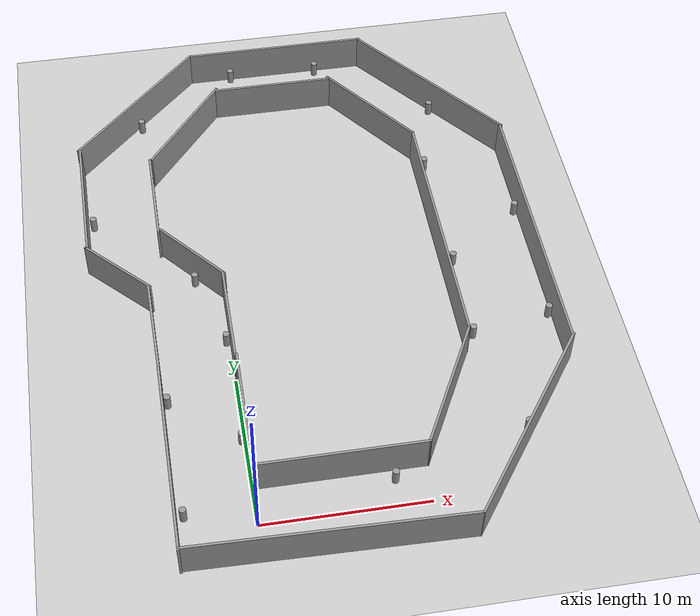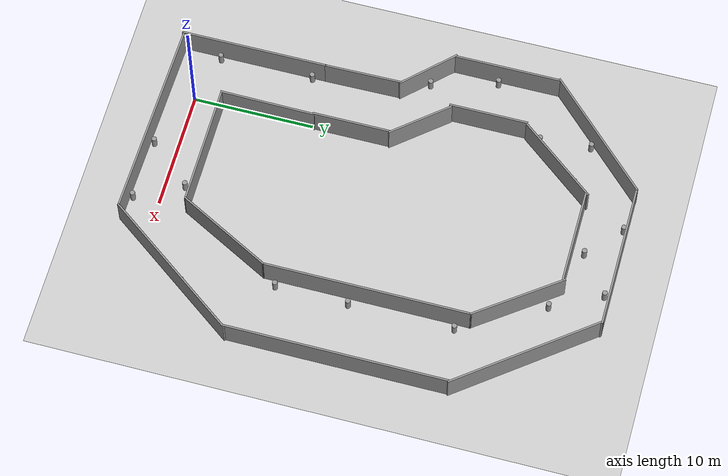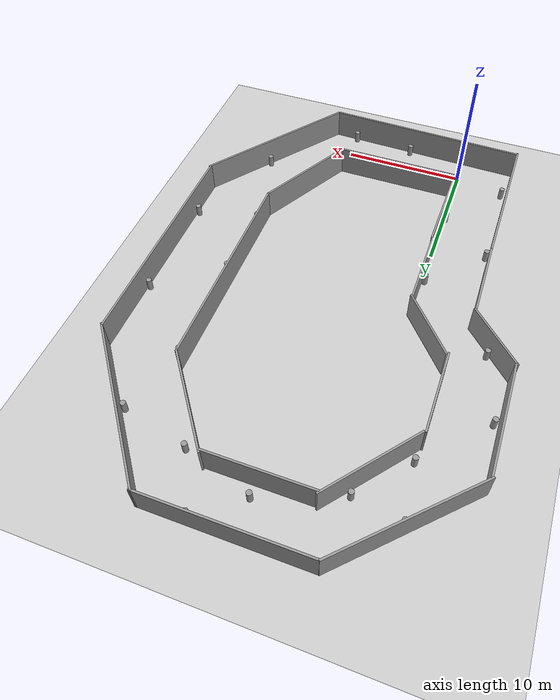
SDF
<sdf version="1.6">
 <world name="default">
  <light name="sun" type="directional">
   <pose>0 0 10 0 -0 0</pose>
   <diffuse>0.8 0.8 0.8 1</diffuse>
   <specular>0.1 0.1 0.1 1</specular>
   <attenuation>
    <range>1000</range>
    <constant>0.9</constant>
    <linear>0.01</linear>
    <quadratic>0.001</quadratic>
   </attenuation>
   <direction>-0.5 0.5 -1</direction>
  </light>
  <model name="ground_plane">
   <static>1</static>
   <link name="link">
    <collision name="collision">
     <geometry><plane><normal>0 0 1</normal><size>100 100</size></plane></geometry>
     <surface><friction><ode><mu>100</mu><mu2>50</mu2></ode></friction></surface>
    </collision>
    <visual name="visual">
     <cast_shadows>0</cast_shadows>
     <geometry><plane><normal>0 0 1</normal><size>100 100</size></plane></geometry>
     <material>
      <script><uri>file://media/materials/scripts/gazebo.material</uri><name>Gazebo/Grey</name></script>
     </material>
    </visual>
   </link>
  </model>
  <gravity>0 0 -9.8</gravity>
  <magnetic_field>6e-06 2.3e-05 -4.2e-05</magnetic_field>
  <atmosphere type="adiabatic"/>
  <physics name="default_physics" default="0" type="ode">
   <max_step_size>0.001</max_step_size>
   <real_time_factor>1</real_time_factor>
   <real_time_update_rate>1000</real_time_update_rate>
  </physics>
  <scene><ambient>0.4 0.4 0.4 1</ambient><background>0.7 0.7 0.7 1</background><shadows>1</shadows></scene>
  <spherical_coordinates>
   <surface_model>EARTH_WGS84</surface_model>
   <latitude_deg>0</latitude_deg>
   <longitude_deg>0</longitude_deg>
   <elevation>0</elevation>
   <heading_deg>0</heading_deg>
  </spherical_coordinates>
  <model name="simple_circle_track">
   <pose>6.01953 17.181 0 0 -0 0</pose>
   <link name="Wall_10">
    <collision name="Wall_10_Collision">
     <geometry><box><size>8.0533 0.15 2.5</size></box></geometry>
     <pose>0 0 1.25 0 -0 0</pose>
    </collision>
    <visual name="Wall_10_Visual">
     <pose>0 0 1.25 0 -0 0</pose>
     <geometry><box><size>8.0533 0.15 2.5</size></box></geometry>
     <material>
      <script><uri>file://media/materials/scripts/gazebo.material</uri><name>Gazebo/Grey</name></script>
      <ambient>1 1 1 1</ambient>
     </material>
    </visual>
    <pose>-6.9537 12.9645 0 0 -0 0.8927</pose>
   </link>
   <link name="Wall_11">
    <collision name="Wall_11_Collision">
     <geometry><box><size>8 0.15 2.5</size></box></geometry>
     <pose>0 0 1.25 0 -0 0</pose>
    </collision>
    <visual name="Wall_11_Visual">
     <pose>0 0 1.25 0 -0 0</pose>
     <geometry><box><size>8 0.15 2.5</size></box></geometry>
     <material>
      <script><uri>file://media/materials/scripts/gazebo.material</uri><name>Gazebo/Grey</name></script>
      <ambient>1 1 1 1</ambient>
     </material>
    </visual>
    <pose>-0.549785 15.8823 0 0 -0 0</pose>
   </link>
   <link name="Wall_12">
    <collision name="Wall_12_Collision">
     <geometry><box><size>8.12029 0.15 2.5</size></box></geometry>
     <pose>0 0 1.25 0 -0 0</pose>
    </collision>
    <visual name="Wall_12_Visual">
     <pose>0 0 1.25 0 -0 0</pose>
     <geometry><box><size>8.12029 0.15 2.5</size></box></geometry>
     <material>
      <script><uri>file://media/materials/scripts/gazebo.material</uri><name>Gazebo/Grey</name></script>
      <ambient>1 1 1 1</ambient>
     </material>
    </visual>
    <pose>5.76574 12.8534 0 0 0 -0.92747</pose>
   </link>
   <link name="Wall_13">
    <collision name="Wall_13_Collision">
     <geometry><box><size>17 0.15 2.5</size></box></geometry>
     <pose>0 0 1.25 0 -0 0</pose>
    </collision>
    <visual name="Wall_13_Visual">
     <pose>0 0 1.25 0 -0 0</pose>
     <geometry><box><size>17 0.15 2.5</size></box></geometry>
     <material>
      <script><uri>file://media/materials/scripts/gazebo.material</uri><name>Gazebo/Grey</name></script>
      <ambient>1 1 1 1</ambient>
     </material>
    </visual>
    <pose>8.15627 1.23982 0 0 0 -1.5708</pose>
   </link>
   <link name="Wall_16">
    <collision name="Wall_16_Collision">
     <geometry><box><size>6.41011 0.15 2.5</size></box></geometry>
     <pose>0 0 1.25 0 -0 0</pose>
    </collision>
    <visual name="Wall_16_Visual">
     <pose>0 0 1.25 0 -0 0</pose>
     <geometry><box><size>6.41011 0.15 2.5</size></box></geometry>
     <material>
      <script><uri>file://media/materials/scripts/gazebo.material</uri><name>Gazebo/Grey</name></script>
      <ambient>1 1 1 1</ambient>
     </material>
    </visual>
    <pose>-10.5599 -4.13279 0 0 -0 1.58354</pose>
   </link>
   <link name="Wall_17">
    <collision name="Wall_17_Collision">
     <geometry><box><size>5.41958 0.15 2.5</size></box></geometry>
     <pose>0 0 1.25 0 -0 0</pose>
    </collision>
    <visual name="Wall_17_Visual">
     <pose>0 0 1.25 0 -0 0</pose>
     <geometry><box><size>5.41958 0.15 2.5</size></box></geometry>
     <material>
      <script><uri>file://media/materials/scripts/gazebo.material</uri><name>Gazebo/Grey</name></script>
      <ambient>1 1 1 1</ambient>
     </material>
    </visual>
    <pose>-12.363 0.879928 0 0 -0 2.34549</pose>
   </link>
   <link name="Wall_20">
    <collision name="Wall_20_Collision">
     <geometry><box><size>8.8404 0.15 2.5</size></box></geometry>
     <pose>0 0 1.25 0 -0 0</pose>
    </collision>
    <visual name="Wall_20_Visual">
     <pose>0 0 1.25 0 -0 0</pose>
     <geometry><box><size>8.8404 0.15 2.5</size></box></geometry>
     <material>
      <script><uri>file://media/materials/scripts/gazebo.material</uri><name>Gazebo/Grey</name></script>
      <ambient>1 1 1 1</ambient>
     </material>
    </visual>
    <pose>-14.1263 7.10805 0 0 -0 1.5708</pose>
   </link>
   <link name="Wall_21">
    <collision name="Wall_21_Collision">
     <geometry><box><size>11.83 0.15 2.5</size></box></geometry>
     <pose>0 0 1.25 0 -0 0</pose>
    </collision>
    <visual name="Wall_21_Visual">
     <pose>0 0 1.25 0 -0 0</pose>
     <geometry><box><size>11.83 0.15 2.5</size></box></geometry>
     <material>
      <script><uri>file://media/materials/scripts/gazebo.material</uri><name>Gazebo/Grey</name></script>
      <ambient>1 1 1 1</ambient>
     </material>
    </visual>
    <pose>-10.0766 15.5827 0 0 -0 0.785398</pose>
   </link>
   <link name="Wall_22">
    <collision name="Wall_22_Collision">
     <geometry><box><size>12.25 0.15 2.5</size></box></geometry>
     <pose>0 0 1.25 0 -0 0</pose>
    </collision>
    <visual name="Wall_22_Visual">
     <pose>0 0 1.25 0 -0 0</pose>
     <geometry><box><size>12.25 0.15 2.5</size></box></geometry>
     <material>
      <script><uri>file://media/materials/scripts/gazebo.material</uri><name>Gazebo/Grey</name></script>
      <ambient>1 1 1 1</ambient>
     </material>
    </visual>
    <pose>0.182715 19.7122 0 0 -0 0</pose>
   </link>
   <link name="Wall_23">
    <collision name="Wall_23_Collision">
     <geometry><box><size>13.2158 0.15 2.5</size></box></geometry>
     <pose>0 0 1.25 0 -0 0</pose>
    </collision>
    <visual name="Wall_23_Visual">
     <pose>0 0 1.25 0 -0 0</pose>
     <geometry><box><size>13.2158 0.15 2.5</size></box></geometry>
     <material>
      <script><uri>file://media/materials/scripts/gazebo.material</uri><name>Gazebo/Grey</name></script>
      <ambient>1 1 1 1</ambient>
     </material>
    </visual>
    <pose>10.1799 14.5681 0 0 0 -0.906619</pose>
   </link>
   <link name="Wall_24">
    <collision name="Wall_24_Collision">
     <geometry><box><size>18.2401 0.15 2.5</size></box></geometry>
     <pose>0 0 1.25 0 -0 0</pose>
    </collision>
    <visual name="Wall_24_Visual">
     <pose>0 0 1.25 0 -0 0</pose>
     <geometry><box><size>18.2401 0.15 2.5</size></box></geometry>
     <material>
      <script><uri>file://media/materials/scripts/gazebo.material</uri><name>Gazebo/Grey</name></script>
      <ambient>1 1 1 1</ambient>
     </material>
    </visual>
    <pose>14.1271 0.379184 0 0 0 -1.5708</pose>
   </link>
   <link name="Wall_25">
    <collision name="Wall_25_Collision">
     <geometry><box><size>13.848 0.15 2.5</size></box></geometry>
     <pose>0 0 1.25 0 -0 0</pose>
    </collision>
    <visual name="Wall_25_Visual">
     <pose>0 0 1.25 0 -0 0</pose>
     <geometry><box><size>13.848 0.15 2.5</size></box></geometry>
     <material>
      <script><uri>file://media/materials/scripts/gazebo.material</uri><name>Gazebo/Grey</name></script>
      <ambient>1 1 1 1</ambient>
     </material>
    </visual>
    <pose>10.1578 -14.1895 0 0 0 -2.20332</pose>
   </link>
   <link name="Wall_28">
    <collision name="Wall_28_Collision">
     <geometry><box><size>16.6326 0.15 2.5</size></box></geometry>
     <pose>0 0 1.25 0 -0 0</pose>
    </collision>
    <visual name="Wall_28_Visual">
     <pose>0 0 1.25 0 -0 0</pose>
     <geometry><box><size>16.6326 0.15 2.5</size></box></geometry>
     <material>
      <script><uri>file://media/materials/scripts/gazebo.material</uri><name>Gazebo/Grey</name></script>
      <ambient>1 1 1 1</ambient>
     </material>
    </visual>
    <pose>-2.20986 -19.514 0 0 -0 3.11738</pose>
   </link>
   <link name="Wall_29">
    <collision name="Wall_29_Collision">
     <geometry><box><size>12.25 0.15 2.5</size></box></geometry>
     <pose>0 0 1.25 0 -0 0</pose>
    </collision>
    <visual name="Wall_29_Visual">
     <pose>0 0 1.25 0 -0 0</pose>
     <geometry><box><size>12.25 0.15 2.5</size></box></geometry>
     <material>
      <script><uri>file://media/materials/scripts/gazebo.material</uri><name>Gazebo/Grey</name></script>
      <ambient>1 1 1 1</ambient>
     </material>
    </visual>
    <pose>-10.5286 -13.3443 0 0 -0 1.5708</pose>
   </link>
   <link name="Wall_31">
    <collision name="Wall_31_Collision">
     <geometry><box><size>7.91001 0.15 2.5</size></box></geometry>
     <pose>0 0 1.25 0 -0 0</pose>
    </collision>
    <visual name="Wall_31_Visual">
     <pose>0 0 1.25 0 -0 0</pose>
     <geometry><box><size>7.91001 0.15 2.5</size></box></geometry>
     <material>
      <script><uri>file://media/materials/scripts/gazebo.material</uri><name>Gazebo/Grey</name></script>
      <ambient>1 1 1 1</ambient>
     </material>
    </visual>
    <pose>-5.91172 -10.892 0 0 0 -1.58108</pose>
   </link>
   <link name="Wall_32">
    <collision name="Wall_32_Collision">
     <geometry><box><size>10.25 0.15 2.5</size></box></geometry>
     <pose>0 0 1.25 0 -0 0</pose>
    </collision>
    <visual name="Wall_32_Visual">
     <pose>0 0 1.25 0 -0 0</pose>
     <geometry><box><size>10.25 0.15 2.5</size></box></geometry>
     <material>
      <script><uri>file://media/materials/scripts/gazebo.material</uri><name>Gazebo/Grey</name></script>
      <ambient>1 1 1 1</ambient>
     </material>
    </visual>
    <pose>-0.901624 -14.7718 0 0 -0 0</pose>
   </link>
   <link name="Wall_33">
    <collision name="Wall_33_Collision">
     <geometry><box><size>8.73017 0.15 2.5</size></box></geometry>
     <pose>0 0 1.25 0 -0 0</pose>
    </collision>
    <visual name="Wall_33_Visual">
     <pose>0 0 1.25 0 -0 0</pose>
     <geometry><box><size>8.73017 0.15 2.5</size></box></geometry>
     <material>
      <script><uri>file://media/materials/scripts/gazebo.material</uri><name>Gazebo/Grey</name></script>
      <ambient>1 1 1 1</ambient>
     </material>
    </visual>
    <pose>6.15232 -10.9785 0 0 -0 1.08478</pose>
   </link>
   <link name="Wall_7">
    <collision name="Wall_7_Collision">
     <geometry><box><size>6.5 0.15 2.5</size></box></geometry>
     <pose>0 0 1.25 0 -0 0</pose>
    </collision>
    <visual name="Wall_7_Visual">
     <pose>0 0 1.25 0 -0 0</pose>
     <geometry><box><size>6.5 0.15 2.5</size></box></geometry>
     <material>
      <script><uri>file://media/materials/scripts/gazebo.material</uri><name>Gazebo/Grey</name></script>
      <ambient>1 1 1 1</ambient>
     </material>
    </visual>
    <pose>-5.95162 -3.83715 0 0 -0 1.5708</pose>
   </link>
   <link name="Wall_8">
    <collision name="Wall_8_Collision">
     <geometry><box><size>5.65568 0.15 2.5</size></box></geometry>
     <pose>0 0 1.25 0 -0 0</pose>
    </collision>
    <visual name="Wall_8_Visual">
     <pose>0 0 1.25 0 -0 0</pose>
     <geometry><box><size>5.65568 0.15 2.5</size></box></geometry>
     <material>
      <script><uri>file://media/materials/scripts/gazebo.material</uri><name>Gazebo/Grey</name></script>
      <ambient>1 1 1 1</ambient>
     </material>
    </visual>
    <pose>-7.65222 1.43745 0 0 -0 2.27411</pose>
   </link>
   <link name="Wall_9">
    <collision name="Wall_9_Collision">
     <geometry><box><size>6.5 0.15 2.5</size></box></geometry>
     <pose>0 0 1.25 0 -0 0</pose>
    </collision>
    <visual name="Wall_9_Visual">
     <pose>0 0 1.25 0 -0 0</pose>
     <geometry><box><size>6.5 0.15 2.5</size></box></geometry>
     <material>
      <script><uri>file://media/materials/scripts/gazebo.material</uri><name>Gazebo/Grey</name></script>
      <ambient>1 1 1 1</ambient>
     </material>
    </visual>
    <pose>-9.59222 6.63225 0 0 -0 1.5708</pose>
   </link>
   <static>1</static>
  </model>
  <model name="unit_cylinder_0">
   <pose>4.91025 -1.92099 0.499999 0 0 -1e-06</pose>
   <link name="link">
    <inertial>
     <mass>1</mass>
     <inertia><ixx>0.145833</ixx><ixy>0</ixy><ixz>0</ixz><iyy>0.145833</iyy><iyz>0</iyz><izz>0.125</izz></inertia>
    </inertial>
    <collision name="collision">
     <geometry><cylinder><radius>0.206983</radius><length>1</length></cylinder></geometry>
    </collision>
    <visual name="visual">
     <geometry><cylinder><radius>0.206983</radius><length>1</length></cylinder></geometry>
     <material>
      <script><name>Gazebo/Grey</name><uri>file://media/materials/scripts/gazebo.material</uri></script>
     </material>
    </visual>
   </link>
  </model>
  <model name="unit_cylinder_0_clone">
   <pose>8.13246 1.65486 0.499999 0 0 -1e-06</pose>
   <link name="link">
    <inertial>
     <mass>1</mass>
     <inertia><ixx>0.145833</ixx><ixy>0</ixy><ixz>0</ixz><iyy>0.145833</iyy><iyz>0</iyz><izz>0.125</izz></inertia>
    </inertial>
    <collision name="collision">
     <geometry><cylinder><radius>0.206983</radius><length>1</length></cylinder></geometry>
    </collision>
    <visual name="visual">
     <geometry><cylinder><radius>0.206983</radius><length>1</length></cylinder></geometry>
     <material>
      <script><name>Gazebo/Grey</name><uri>file://media/materials/scripts/gazebo.material</uri></script>
     </material>
    </visual>
   </link>
  </model>
  <model name="unit_cylinder_0_clone_0">
   <pose>10.0956 -2.13387 0.499991 0 0 -1e-06</pose>
   <link name="link">
    <inertial>
     <mass>1</mass>
     <inertia><ixx>0.145833</ixx><ixy>0</ixy><ixz>0</ixz><iyy>0.145833</iyy><iyz>0</iyz><izz>0.125</izz></inertia>
    </inertial>
    <collision name="collision">
     <geometry><cylinder><radius>0.206983</radius><length>1</length></cylinder></geometry>
    </collision>
    <visual name="visual">
     <geometry><cylinder><radius>0.206983</radius><length>1</length></cylinder></geometry>
     <material>
      <script><name>Gazebo/Grey</name><uri>file://media/materials/scripts/gazebo.material</uri></script>
     </material>
    </visual>
   </link>
  </model>
  <model name="unit_cylinder_0_clone_1">
   <pose>16.4755 3.87527 0.49999 0 0 -2e-06</pose>
   <link name="link">
    <inertial>
     <mass>1</mass>
     <inertia><ixx>0.145833</ixx><ixy>0</ixy><ixz>0</ixz><iyy>0.145833</iyy><iyz>0</iyz><izz>0.125</izz></inertia>
    </inertial>
    <collision name="collision">
     <geometry><cylinder><radius>0.206983</radius><length>1</length></cylinder></geometry>
    </collision>
    <visual name="visual">
     <geometry><cylinder><radius>0.206983</radius><length>1</length></cylinder></geometry>
     <material>
      <script><name>Gazebo/Grey</name><uri>file://media/materials/scripts/gazebo.material</uri></script>
     </material>
    </visual>
   </link>
  </model>
  <model name="unit_cylinder_0_clone_2">
   <pose>19.8436 11.9819 0.499998 0 -0 0</pose>
   <link name="link">
    <inertial>
     <mass>1</mass>
     <inertia><ixx>0.145833</ixx><ixy>0</ixy><ixz>0</ixz><iyy>0.145833</iyy><iyz>0</iyz><izz>0.125</izz></inertia>
    </inertial>
    <collision name="collision">
     <geometry><cylinder><radius>0.206983</radius><length>1</length></cylinder></geometry>
    </collision>
    <visual name="visual">
     <geometry><cylinder><radius>0.206983</radius><length>1</length></cylinder></geometry>
     <material>
      <script><name>Gazebo/Grey</name><uri>file://media/materials/scripts/gazebo.material</uri></script>
     </material>
    </visual>
   </link>
  </model>
  <model name="unit_cylinder_0_clone_3">
   <pose>14.8959 17.0921 0.499999 0 0 -1e-06</pose>
   <link name="link">
    <inertial>
     <mass>1</mass>
     <inertia><ixx>0.145833</ixx><ixy>0</ixy><ixz>0</ixz><iyy>0.145833</iyy><iyz>0</iyz><izz>0.125</izz></inertia>
    </inertial>
    <collision name="collision">
     <geometry><cylinder><radius>0.206983</radius><length>1</length></cylinder></geometry>
    </collision>
    <visual name="visual">
     <geometry><cylinder><radius>0.206983</radius><length>1</length></cylinder></geometry>
     <material>
      <script><name>Gazebo/Grey</name><uri>file://media/materials/scripts/gazebo.material</uri></script>
     </material>
    </visual>
   </link>
  </model>
  <model name="unit_cylinder_0_clone_4">
   <pose>19.8646 20.7805 0.5 0 -0 0</pose>
   <link name="link">
    <inertial>
     <mass>1</mass>
     <inertia><ixx>0.145833</ixx><ixy>0</ixy><ixz>0</ixz><iyy>0.145833</iyy><iyz>0</iyz><izz>0.125</izz></inertia>
    </inertial>
    <collision name="collision">
     <geometry><cylinder><radius>0.206983</radius><length>1</length></cylinder></geometry>
    </collision>
    <visual name="visual">
     <geometry><cylinder><radius>0.206983</radius><length>1</length></cylinder></geometry>
     <material>
      <script><name>Gazebo/Grey</name><uri>file://media/materials/scripts/gazebo.material</uri></script>
     </material>
    </visual>
   </link>
  </model>
  <model name="unit_cylinder_0_clone_5">
   <pose>14.8093 25.7212 0.499999 0 0 -1e-06</pose>
   <link name="link">
    <inertial>
     <mass>1</mass>
     <inertia><ixx>0.145833</ixx><ixy>0</ixy><ixz>0</ixz><iyy>0.145833</iyy><iyz>0</iyz><izz>0.125</izz></inertia>
    </inertial>
    <collision name="collision">
     <geometry><cylinder><radius>0.206983</radius><length>1</length></cylinder></geometry>
    </collision>
    <visual name="visual">
     <geometry><cylinder><radius>0.206983</radius><length>1</length></cylinder></geometry>
     <material>
      <script><name>Gazebo/Grey</name><uri>file://media/materials/scripts/gazebo.material</uri></script>
     </material>
    </visual>
   </link>
  </model>
  <model name="unit_cylinder_0_clone_6">
   <pose>16.279 31.106 0.499999 0 -0 0</pose>
   <link name="link">
    <inertial>
     <mass>1</mass>
     <inertia><ixx>0.145833</ixx><ixy>0</ixy><ixz>0</ixz><iyy>0.145833</iyy><iyz>0</iyz><izz>0.125</izz></inertia>
    </inertial>
    <collision name="collision">
     <geometry><cylinder><radius>0.206983</radius><length>1</length></cylinder></geometry>
    </collision>
    <visual name="visual">
     <geometry><cylinder><radius>0.206983</radius><length>1</length></cylinder></geometry>
     <material>
      <script><name>Gazebo/Grey</name><uri>file://media/materials/scripts/gazebo.material</uri></script>
     </material>
    </visual>
   </link>
  </model>
  <model name="unit_cylinder_0_clone_7">
   <pose>11.0255 32.4092 0.499999 0 0 -1e-06</pose>
   <link name="link">
    <inertial>
     <mass>1</mass>
     <inertia><ixx>0.145833</ixx><ixy>0</ixy><ixz>0</ixz><iyy>0.145833</iyy><iyz>0</iyz><izz>0.125</izz></inertia>
    </inertial>
    <collision name="collision">
     <geometry><cylinder><radius>0.206983</radius><length>1</length></cylinder></geometry>
    </collision>
    <visual name="visual">
     <geometry><cylinder><radius>0.206983</radius><length>1</length></cylinder></geometry>
     <material>
      <script><name>Gazebo/Grey</name><uri>file://media/materials/scripts/gazebo.material</uri></script>
     </material>
    </visual>
   </link>
  </model>
  <model name="unit_cylinder_0_clone_8">
   <pose>8.94878 36.4537 0.499992 0 -0 0</pose>
   <link name="link">
    <inertial>
     <mass>1</mass>
     <inertia><ixx>0.145833</ixx><ixy>0</ixy><ixz>0</ixz><iyy>0.145833</iyy><iyz>0</iyz><izz>0.125</izz></inertia>
    </inertial>
    <collision name="collision">
     <geometry><cylinder><radius>0.206983</radius><length>1</length></cylinder></geometry>
    </collision>
    <visual name="visual">
     <geometry><cylinder><radius>0.206983</radius><length>1</length></cylinder></geometry>
     <material>
      <script><name>Gazebo/Grey</name><uri>file://media/materials/scripts/gazebo.material</uri></script>
     </material>
    </visual>
   </link>
  </model>
  <model name="unit_cylinder_0_clone_9">
   <pose>5.73124 34.0503 0.499999 0 0 -1e-06</pose>
   <link name="link">
    <inertial>
     <mass>1</mass>
     <inertia><ixx>0.145833</ixx><ixy>0</ixy><ixz>0</ixz><iyy>0.145833</iyy><iyz>0</iyz><izz>0.125</izz></inertia>
    </inertial>
    <collision name="collision">
     <geometry><cylinder><radius>0.206983</radius><length>1</length></cylinder></geometry>
    </collision>
    <visual name="visual">
     <geometry><cylinder><radius>0.206983</radius><length>1</length></cylinder></geometry>
     <material>
      <script><name>Gazebo/Grey</name><uri>file://media/materials/scripts/gazebo.material</uri></script>
     </material>
    </visual>
   </link>
  </model>
  <model name="unit_cylinder_0_clone_10">
   <pose>2.87305 36.6112 0.5 0 0 -1e-06</pose>
   <link name="link">
    <inertial>
     <mass>1</mass>
     <inertia><ixx>0.145833</ixx><ixy>0</ixy><ixz>0</ixz><iyy>0.145833</iyy><iyz>0</iyz><izz>0.125</izz></inertia>
    </inertial>
    <collision name="collision">
     <geometry><cylinder><radius>0.206983</radius><length>1</length></cylinder></geometry>
    </collision>
    <visual name="visual">
     <geometry><cylinder><radius>0.206983</radius><length>1</length></cylinder></geometry>
     <material>
      <script><name>Gazebo/Grey</name><uri>file://media/materials/scripts/gazebo.material</uri></script>
     </material>
    </visual>
   </link>
  </model>
  <model name="unit_cylinder_0_clone_11">
   <pose>-0.202632 31.7982 0.499998 0 0 -1e-06</pose>
   <link name="link">
    <inertial>
     <mass>1</mass>
     <inertia><ixx>0.145833</ixx><ixy>0</ixy><ixz>0</ixz><iyy>0.145833</iyy><iyz>0</iyz><izz>0.125</izz></inertia>
    </inertial>
    <collision name="collision">
     <geometry><cylinder><radius>0.206983</radius><length>1</length></cylinder></geometry>
    </collision>
    <visual name="visual">
     <geometry><cylinder><radius>0.206983</radius><length>1</length></cylinder></geometry>
     <material>
      <script><name>Gazebo/Grey</name><uri>file://media/materials/scripts/gazebo.material</uri></script>
     </material>
    </visual>
   </link>
  </model>
  <model name="unit_cylinder_0_clone_12">
   <pose>-3.82774 32.3835 0.499991 0 0 -1e-06</pose>
   <link name="link">
    <inertial>
     <mass>1</mass>
     <inertia><ixx>0.145833</ixx><ixy>0</ixy><ixz>0</ixz><iyy>0.145833</iyy><iyz>0</iyz><izz>0.125</izz></inertia>
    </inertial>
    <collision name="collision">
     <geometry><cylinder><radius>0.206983</radius><length>1</length></cylinder></geometry>
    </collision>
    <visual name="visual">
     <geometry><cylinder><radius>0.206983</radius><length>1</length></cylinder></geometry>
     <material>
      <script><name>Gazebo/Grey</name><uri>file://media/materials/scripts/gazebo.material</uri></script>
     </material>
    </visual>
   </link>
  </model>
  <model name="unit_cylinder_0_clone_13">
   <pose>-3.38216 28.2017 0.499999 0 0 -1e-06</pose>
   <link name="link">
    <inertial>
     <mass>1</mass>
     <inertia><ixx>0.145833</ixx><ixy>0</ixy><ixz>0</ixz><iyy>0.145833</iyy><iyz>0</iyz><izz>0.125</izz></inertia>
    </inertial>
    <collision name="collision">
     <geometry><cylinder><radius>0.206983</radius><length>1</length></cylinder></geometry>
    </collision>
    <visual name="visual">
     <geometry><cylinder><radius>0.206983</radius><length>1</length></cylinder></geometry>
     <material>
      <script><name>Gazebo/Grey</name><uri>file://media/materials/scripts/gazebo.material</uri></script>
     </material>
    </visual>
   </link>
  </model>
  <model name="unit_cylinder_0_clone_14">
   <pose>-7.69392 23.6909 0.499991 0 0 -1e-06</pose>
   <link name="link">
    <inertial>
     <mass>1</mass>
     <inertia><ixx>0.145833</ixx><ixy>0</ixy><ixz>0</ixz><iyy>0.145833</iyy><iyz>0</iyz><izz>0.125</izz></inertia>
    </inertial>
    <collision name="collision">
     <geometry><cylinder><radius>0.206983</radius><length>1</length></cylinder></geometry>
    </collision>
    <visual name="visual">
     <geometry><cylinder><radius>0.206983</radius><length>1</length></cylinder></geometry>
     <material>
      <script><name>Gazebo/Grey</name><uri>file://media/materials/scripts/gazebo.material</uri></script>
     </material>
    </visual>
   </link>
  </model>
  <model name="unit_cylinder_0_clone_15">
   <pose>-1.62861 17.9302 0.499991 0 0 -1e-06</pose>
   <link name="link">
    <inertial>
     <mass>1</mass>
     <inertia><ixx>0.145833</ixx><ixy>0</ixy><ixz>0</ixz><iyy>0.145833</iyy><iyz>0</iyz><izz>0.125</izz></inertia>
    </inertial>
    <collision name="collision">
     <geometry><cylinder><radius>0.206983</radius><length>1</length></cylinder></geometry>
    </collision>
    <visual name="visual">
     <geometry><cylinder><radius>0.206983</radius><length>1</length></cylinder></geometry>
     <material>
      <script><name>Gazebo/Grey</name><uri>file://media/materials/scripts/gazebo.material</uri></script>
     </material>
    </visual>
   </link>
  </model>
  <model name="unit_cylinder_0_clone_16">
   <pose>-0.214074 12.9085 0.49999 0 0 -3e-06</pose>
   <link name="link">
    <inertial>
     <mass>1</mass>
     <inertia><ixx>0.145833</ixx><ixy>0</ixy><ixz>0</ixz><iyy>0.145833</iyy><iyz>0</iyz><izz>0.125</izz></inertia>
    </inertial>
    <collision name="collision">
     <geometry><cylinder><radius>0.206983</radius><length>1</length></cylinder></geometry>
    </collision>
    <visual name="visual">
     <geometry><cylinder><radius>0.206983</radius><length>1</length></cylinder></geometry>
     <material>
      <script><name>Gazebo/Grey</name><uri>file://media/materials/scripts/gazebo.material</uri></script>
     </material>
    </visual>
   </link>
  </model>
  <model name="unit_cylinder_0_clone_17">
   <pose>-6.15465 18.3435 0.499991 0 0 -1e-06</pose>
   <link name="link">
    <inertial>
     <mass>1</mass>
     <inertia><ixx>0.145833</ixx><ixy>0</ixy><ixz>0</ixz><iyy>0.145833</iyy><iyz>0</iyz><izz>0.125</izz></inertia>
    </inertial>
    <collision name="collision">
     <geometry><cylinder><radius>0.206983</radius><length>1</length></cylinder></geometry>
    </collision>
    <visual name="visual">
     <geometry><cylinder><radius>0.206983</radius><length>1</length></cylinder></geometry>
     <material>
      <script><name>Gazebo/Grey</name><uri>file://media/materials/scripts/gazebo.material</uri></script>
     </material>
    </visual>
   </link>
  </model>
  <model name="unit_cylinder_0_clone_18">
   <pose>-4.2271 8.80962 0.5 0 0 -2e-06</pose>
   <link name="link">
    <inertial>
     <mass>1</mass>
     <inertia><ixx>0.145833</ixx><ixy>0</ixy><ixz>0</ixz><iyy>0.145833</iyy><iyz>0</iyz><izz>0.125</izz></inertia>
    </inertial>
    <collision name="collision">
     <geometry><cylinder><radius>0.206983</radius><length>1</length></cylinder></geometry>
    </collision>
    <visual name="visual">
     <geometry><cylinder><radius>0.206983</radius><length>1</length></cylinder></geometry>
     <material>
      <script><name>Gazebo/Grey</name><uri>file://media/materials/scripts/gazebo.material</uri></script>
     </material>
    </visual>
   </link>
  </model>
  <model name="unit_cylinder_0_clone_19">
   <pose>-0.183922 5.60654 0.499999 0 0 -1e-06</pose>
   <link name="link">
    <inertial>
     <mass>1</mass>
     <inertia><ixx>0.145833</ixx><ixy>0</ixy><ixz>0</ixz><iyy>0.145833</iyy><iyz>0</iyz><izz>0.125</izz></inertia>
    </inertial>
    <collision name="collision">
     <geometry><cylinder><radius>0.206983</radius><length>1</length></cylinder></geometry>
    </collision>
    <visual name="visual">
     <geometry><cylinder><radius>0.206983</radius><length>1</length></cylinder></geometry>
     <material>
      <script><name>Gazebo/Grey</name><uri>file://media/materials/scripts/gazebo.material</uri></script>
     </material>
    </visual>
   </link>
  </model>
  <model name="unit_cylinder_0_clone_20">
   <pose>-4.05964 1.06345 0.499999 0 0 -1e-06</pose>
   <link name="link">
    <inertial>
     <mass>1</mass>
     <inertia><ixx>0.145833</ixx><ixy>0</ixy><ixz>0</ixz><iyy>0.145833</iyy><iyz>0</iyz><izz>0.125</izz></inertia>
    </inertial>
    <collision name="collision">
     <geometry><cylinder><radius>0.206983</radius><length>1</length></cylinder></geometry>
    </collision>
    <visual name="visual">
     <geometry><cylinder><radius>0.206983</radius><length>1</length></cylinder></geometry>
     <material>
      <script><name>Gazebo/Grey</name><uri>file://media/materials/scripts/gazebo.material</uri></script>
     </material>
    </visual>
   </link>
  </model>
  <model name="unit_cylinder_0_clone_21">
   <pose>14.8326 11.1036 0.499992 0 0 -1e-06</pose>
   <link name="link">
    <inertial>
     <mass>1</mass>
     <inertia><ixx>0.145833</ixx><ixy>0</ixy><ixz>0</ixz><iyy>0.145833</iyy><iyz>0</iyz><izz>0.125</izz></inertia>
    </inertial>
    <collision name="collision">
     <geometry><cylinder><radius>0.206983</radius><length>1</length></cylinder></geometry>
    </collision>
    <visual name="visual">
     <geometry><cylinder><radius>0.206983</radius><length>1</length></cylinder></geometry>
     <material>
      <script><name>Gazebo/Grey</name><uri>file://media/materials/scripts/gazebo.material</uri></script>
     </material>
    </visual>
   </link>
  </model>
 </world>
</sdf>
